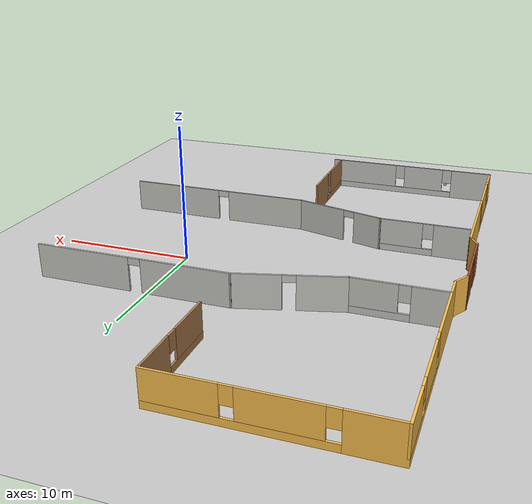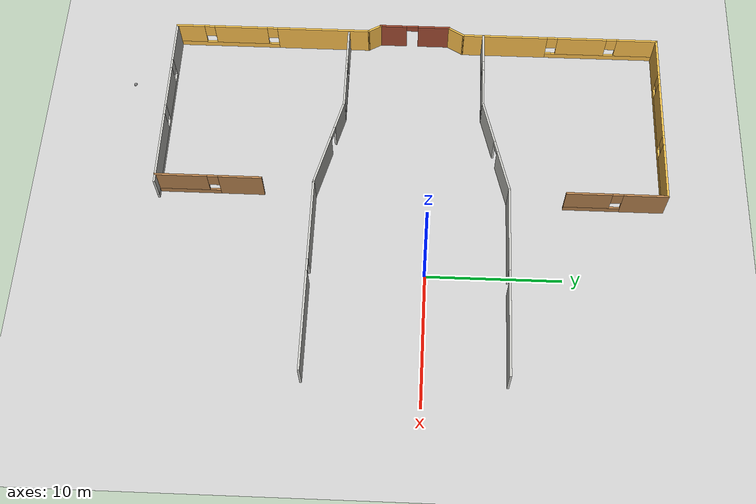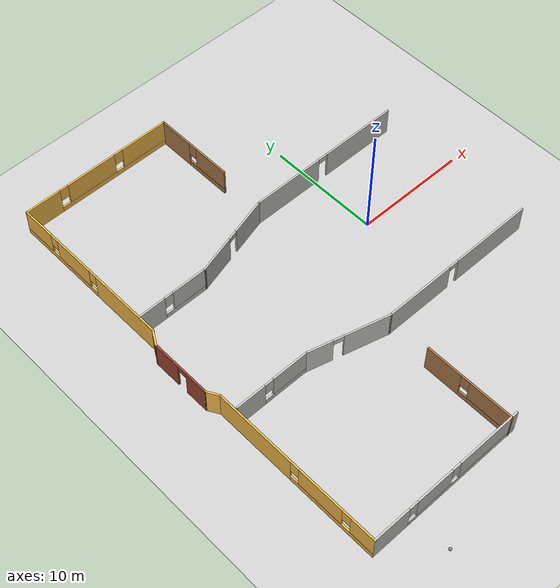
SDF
<sdf version="1.6">
 <world name="default">
  <model name="ground_plane">
   <static>1</static>
   <link name="link">
    <collision name="collision">
     <geometry><plane><normal>0 0 1</normal><size>100 100</size></plane></geometry>
     <surface><friction><ode><mu>100</mu><mu2>50</mu2></ode></friction></surface>
    </collision>
    <visual name="visual">
     <cast_shadows>0</cast_shadows>
     <geometry><plane><normal>0 0 1</normal><size>100 100</size></plane></geometry>
     <material>
      <script><uri>file://media/materials/scripts/gazebo.material</uri><name>Gazebo/Grey</name></script>
     </material>
    </visual>
   </link>
  </model>
  <model name="model">
   <pose>1.3797 -1.1711 0 0 -0 0</pose>
   <link name="Wall_22">
    <pose>-21.3175 -11.3683 0 0 0 -1.5708</pose>
    <visual name="Wall_22_Visual_0">
     <pose>-3.98783 0 1.25 0 -0 0</pose>
     <geometry><box><size>7.27435 0.15 2.5</size></box></geometry>
     <material>
      <script><uri>file://media/materials/scripts/gazebo.material</uri><name>Gazebo/Grey</name></script>
      <ambient>1 0.764706 0.305882 1</ambient>
     </material>
     <meta><layer>0</layer></meta>
    </visual>
    <collision name="Wall_22_Collision_0">
     <geometry><box><size>7.27435 0.15 2.5</size></box></geometry>
     <pose>-3.98783 0 1.25 0 -0 0</pose>
    </collision>
    <visual name="Wall_22_Visual_1">
     <pose>3.63717 0 0.25 0 -0 0</pose>
     <geometry><box><size>7.97565 0.15 0.5</size></box></geometry>
     <material>
      <script><uri>file://media/materials/scripts/gazebo.material</uri><name>Gazebo/Grey</name></script>
      <ambient>1 0.764706 0.305882 1</ambient>
     </material>
     <meta><layer>0</layer></meta>
    </visual>
    <collision name="Wall_22_Collision_1">
     <geometry><box><size>7.97565 0.15 0.5</size></box></geometry>
     <pose>3.63717 0 0.25 0 -0 0</pose>
    </collision>
    <visual name="Wall_22_Visual_2">
     <pose>2.53115 0 1.5 0 -0 0</pose>
     <geometry><box><size>4.16361 0.15 2</size></box></geometry>
     <material>
      <script><uri>file://media/materials/scripts/gazebo.material</uri><name>Gazebo/Grey</name></script>
      <ambient>1 0.764706 0.305882 1</ambient>
     </material>
     <meta><layer>0</layer></meta>
    </visual>
    <collision name="Wall_22_Collision_2">
     <geometry><box><size>4.16361 0.15 2</size></box></geometry>
     <pose>2.53115 0 1.5 0 -0 0</pose>
    </collision>
    <visual name="Wall_22_Visual_3">
     <pose>6.51898 0 1.5 0 -0 0</pose>
     <geometry><box><size>2.21204 0.15 2</size></box></geometry>
     <material>
      <script><uri>file://media/materials/scripts/gazebo.material</uri><name>Gazebo/Grey</name></script>
      <ambient>1 0.764706 0.305882 1</ambient>
     </material>
     <meta><layer>0</layer></meta>
    </visual>
    <collision name="Wall_22_Collision_3">
     <geometry><box><size>2.21204 0.15 2</size></box></geometry>
     <pose>6.51898 0 1.5 0 -0 0</pose>
    </collision>
    <visual name="Wall_22_Visual_4">
     <pose>0.049349 0 1.9 0 -0 0</pose>
     <geometry><box><size>0.8 0.15 1.2</size></box></geometry>
     <material>
      <script><uri>file://media/materials/scripts/gazebo.material</uri><name>Gazebo/Grey</name></script>
      <ambient>1 0.764706 0.305882 1</ambient>
     </material>
     <meta><layer>0</layer></meta>
    </visual>
    <collision name="Wall_22_Collision_4">
     <geometry><box><size>0.8 0.15 1.2</size></box></geometry>
     <pose>0.049349 0 1.9 0 -0 0</pose>
    </collision>
    <visual name="Wall_22_Visual_5">
     <pose>5.01296 0 1.9 0 -0 0</pose>
     <geometry><box><size>0.8 0.15 1.2</size></box></geometry>
     <material>
      <script><uri>file://media/materials/scripts/gazebo.material</uri><name>Gazebo/Grey</name></script>
      <ambient>1 0.764706 0.305882 1</ambient>
     </material>
     <meta><layer>0</layer></meta>
    </visual>
    <collision name="Wall_22_Collision_5">
     <geometry><box><size>0.8 0.15 1.2</size></box></geometry>
     <pose>5.01296 0 1.9 0 -0 0</pose>
    </collision>
   </link>
   <link name="Wall_23">
    <pose>-14.2675 -18.9183 0 0 -0 0</pose>
    <visual name="Wall_23_Visual_0">
     <pose>-5.44036 0 1.25 0 -0 0</pose>
     <geometry><box><size>3.36928 0.15 2.5</size></box></geometry>
     <material>
      <script><uri>file://media/materials/scripts/gazebo.material</uri><name>Gazebo/CeilingTiled</name></script>
      <ambient>1 0.764706 0.305882 1</ambient>
     </material>
     <meta><layer>0</layer></meta>
    </visual>
    <collision name="Wall_23_Collision_0">
     <geometry><box><size>3.36928 0.15 2.5</size></box></geometry>
     <pose>-5.44036 0 1.25 0 -0 0</pose>
    </collision>
    <visual name="Wall_23_Visual_1">
     <pose>1.68464 0 0.25 0 -0 0</pose>
     <geometry><box><size>10.8807 0.15 0.5</size></box></geometry>
     <material>
      <script><uri>file://media/materials/scripts/gazebo.material</uri><name>Gazebo/CeilingTiled</name></script>
      <ambient>1 0.764706 0.305882 1</ambient>
     </material>
     <meta><layer>0</layer></meta>
    </visual>
    <collision name="Wall_23_Collision_1">
     <geometry><box><size>10.8807 0.15 0.5</size></box></geometry>
     <pose>1.68464 0 0.25 0 -0 0</pose>
    </collision>
    <visual name="Wall_23_Visual_2">
     <pose>-1.24407 0 1.5 0 -0 0</pose>
     <geometry><box><size>3.42331 0.15 2</size></box></geometry>
     <material>
      <script><uri>file://media/materials/scripts/gazebo.material</uri><name>Gazebo/CeilingTiled</name></script>
      <ambient>1 0.764706 0.305882 1</ambient>
     </material>
     <meta><layer>0</layer></meta>
    </visual>
    <collision name="Wall_23_Collision_2">
     <geometry><box><size>3.42331 0.15 2</size></box></geometry>
     <pose>-1.24407 0 1.5 0 -0 0</pose>
    </collision>
    <visual name="Wall_23_Visual_3">
     <pose>4.19629 0 1.5 0 -0 0</pose>
     <geometry><box><size>5.85741 0.15 2</size></box></geometry>
     <material>
      <script><uri>file://media/materials/scripts/gazebo.material</uri><name>Gazebo/CeilingTiled</name></script>
      <ambient>1 0.764706 0.305882 1</ambient>
     </material>
     <meta><layer>0</layer></meta>
    </visual>
    <collision name="Wall_23_Collision_3">
     <geometry><box><size>5.85741 0.15 2</size></box></geometry>
     <pose>4.19629 0 1.5 0 -0 0</pose>
    </collision>
    <visual name="Wall_23_Visual_4">
     <pose>-3.35572 0 1.9 0 -0 0</pose>
     <geometry><box><size>0.8 0.15 1.2</size></box></geometry>
     <material>
      <script><uri>file://media/materials/scripts/gazebo.material</uri><name>Gazebo/CeilingTiled</name></script>
      <ambient>1 0.764706 0.305882 1</ambient>
     </material>
     <meta><layer>0</layer></meta>
    </visual>
    <collision name="Wall_23_Collision_4">
     <geometry><box><size>0.8 0.15 1.2</size></box></geometry>
     <pose>-3.35572 0 1.9 0 -0 0</pose>
    </collision>
    <visual name="Wall_23_Visual_5">
     <pose>0.867585 0 1.9 0 -0 0</pose>
     <geometry><box><size>0.8 0.15 1.2</size></box></geometry>
     <material>
      <script><uri>file://media/materials/scripts/gazebo.material</uri><name>Gazebo/CeilingTiled</name></script>
      <ambient>1 0.764706 0.305882 1</ambient>
     </material>
     <meta><layer>0</layer></meta>
    </visual>
    <collision name="Wall_23_Collision_5">
     <geometry><box><size>0.8 0.15 1.2</size></box></geometry>
     <pose>0.867585 0 1.9 0 -0 0</pose>
    </collision>
   </link>
   <link name="Wall_36">
    <collision name="Wall_36_Collision">
     <geometry><box><size>1.25 0.15 2.5</size></box></geometry>
     <pose>0 0 1.25 0 -0 0</pose>
    </collision>
    <visual name="Wall_36_Visual">
     <pose>0 0 1.25 0 -0 0</pose>
     <geometry><box><size>1.25 0.15 2.5</size></box></geometry>
     <material>
      <script><uri>file://media/materials/scripts/gazebo.material</uri><name>Gazebo/Grey</name></script>
      <ambient>1 0.764706 0.305882 1</ambient>
     </material>
     <meta><layer>0</layer></meta>
    </visual>
    <pose>-21.5925 -3.34197 0 0 -0 2.0944</pose>
   </link>
   <link name="Wall_37">
    <pose>-21.8675 -0.190651 0 0 -0 1.5708</pose>
    <visual name="Wall_37_Visual_0">
     <pose>-1.69498 0 1.25 0 -0 0</pose>
     <geometry><box><size>2.11003 0.15 2.5</size></box></geometry>
     <material>
      <script><uri>file://media/materials/scripts/gazebo.material</uri><name>Gazebo/Bricks</name></script>
      <ambient>1 1 1 1</ambient>
     </material>
     <meta><layer>0</layer></meta>
    </visual>
    <collision name="Wall_37_Collision_0">
     <geometry><box><size>2.11003 0.15 2.5</size></box></geometry>
     <pose>-1.69498 0 1.25 0 -0 0</pose>
    </collision>
    <visual name="Wall_37_Visual_1">
     <pose>1.50502 0 1.25 0 -0 0</pose>
     <geometry><box><size>2.48997 0.15 2.5</size></box></geometry>
     <material>
      <script><uri>file://media/materials/scripts/gazebo.material</uri><name>Gazebo/Bricks</name></script>
      <ambient>1 1 1 1</ambient>
     </material>
     <meta><layer>0</layer></meta>
    </visual>
    <collision name="Wall_37_Collision_1">
     <geometry><box><size>2.48997 0.15 2.5</size></box></geometry>
     <pose>1.50502 0 1.25 0 -0 0</pose>
    </collision>
    <visual name="Wall_37_Visual_2">
     <pose>-0.189968 0 2.25 0 -0 0</pose>
     <geometry><box><size>0.9 0.15 0.5</size></box></geometry>
     <material>
      <script><uri>file://media/materials/scripts/gazebo.material</uri><name>Gazebo/Bricks</name></script>
      <ambient>1 1 1 1</ambient>
     </material>
     <meta><layer>0</layer></meta>
    </visual>
    <collision name="Wall_37_Collision_2">
     <geometry><box><size>0.9 0.15 0.5</size></box></geometry>
     <pose>-0.189968 0 2.25 0 -0 0</pose>
    </collision>
   </link>
   <link name="Wall_38">
    <collision name="Wall_38_Collision">
     <geometry><box><size>1.5 0.15 2.5</size></box></geometry>
     <pose>0 0 1.25 0 -0 0</pose>
    </collision>
    <visual name="Wall_38_Visual">
     <pose>0 0 1.25 0 -0 0</pose>
     <geometry><box><size>1.5 0.15 2.5</size></box></geometry>
     <material>
      <script><uri>file://media/materials/scripts/gazebo.material</uri><name>Gazebo/Grey</name></script>
      <ambient>1 0.764706 0.305882 1</ambient>
     </material>
     <meta><layer>0</layer></meta>
    </visual>
    <pose>-21.53 3.06892 0 0 -0 1.0472</pose>
   </link>
   <link name="Wall_40">
    <pose>-21.1925 11.2035 0 0 -0 1.5708</pose>
    <visual name="Wall_40_Visual_0">
     <pose>-4.29734 0 1.25 0 -0 0</pose>
     <geometry><box><size>6.65533 0.15 2.5</size></box></geometry>
     <material>
      <script><uri>file://media/materials/scripts/gazebo.material</uri><name>Gazebo/Grey</name></script>
      <ambient>1 0.764706 0.305882 1</ambient>
     </material>
     <meta><layer>0</layer></meta>
    </visual>
    <collision name="Wall_40_Collision_0">
     <geometry><box><size>6.65533 0.15 2.5</size></box></geometry>
     <pose>-4.29734 0 1.25 0 -0 0</pose>
    </collision>
    <visual name="Wall_40_Visual_1">
     <pose>3.32766 0 0.25 0 -0 0</pose>
     <geometry><box><size>8.59467 0.15 0.5</size></box></geometry>
     <material>
      <script><uri>file://media/materials/scripts/gazebo.material</uri><name>Gazebo/Grey</name></script>
      <ambient>1 0.764706 0.305882 1</ambient>
     </material>
     <meta><layer>0</layer></meta>
    </visual>
    <collision name="Wall_40_Collision_1">
     <geometry><box><size>8.59467 0.15 0.5</size></box></geometry>
     <pose>3.32766 0 0.25 0 -0 0</pose>
    </collision>
    <visual name="Wall_40_Visual_2">
     <pose>1.74939 0 1.5 0 -0 0</pose>
     <geometry><box><size>3.83812 0.15 2</size></box></geometry>
     <material>
      <script><uri>file://media/materials/scripts/gazebo.material</uri><name>Gazebo/Grey</name></script>
      <ambient>1 0.764706 0.305882 1</ambient>
     </material>
     <meta><layer>0</layer></meta>
    </visual>
    <collision name="Wall_40_Collision_2">
     <geometry><box><size>3.83812 0.15 2</size></box></geometry>
     <pose>1.74939 0 1.5 0 -0 0</pose>
    </collision>
    <visual name="Wall_40_Visual_3">
     <pose>6.04673 0 1.5 0 -0 0</pose>
     <geometry><box><size>3.15655 0.15 2</size></box></geometry>
     <material>
      <script><uri>file://media/materials/scripts/gazebo.material</uri><name>Gazebo/Grey</name></script>
      <ambient>1 0.764706 0.305882 1</ambient>
     </material>
     <meta><layer>0</layer></meta>
    </visual>
    <collision name="Wall_40_Collision_3">
     <geometry><box><size>3.15655 0.15 2</size></box></geometry>
     <pose>6.04673 0 1.5 0 -0 0</pose>
    </collision>
    <visual name="Wall_40_Visual_4">
     <pose>-0.569674 0 1.9 0 -0 0</pose>
     <geometry><box><size>0.8 0.15 1.2</size></box></geometry>
     <material>
      <script><uri>file://media/materials/scripts/gazebo.material</uri><name>Gazebo/Grey</name></script>
      <ambient>1 0.764706 0.305882 1</ambient>
     </material>
     <meta><layer>0</layer></meta>
    </visual>
    <collision name="Wall_40_Collision_4">
     <geometry><box><size>0.8 0.15 1.2</size></box></geometry>
     <pose>-0.569674 0 1.9 0 -0 0</pose>
    </collision>
    <visual name="Wall_40_Visual_5">
     <pose>4.06845 0 1.9 0 -0 0</pose>
     <geometry><box><size>0.8 0.15 1.2</size></box></geometry>
     <material>
      <script><uri>file://media/materials/scripts/gazebo.material</uri><name>Gazebo/Grey</name></script>
      <ambient>1 0.764706 0.305882 1</ambient>
     </material>
     <meta><layer>0</layer></meta>
    </visual>
    <collision name="Wall_40_Collision_5">
     <geometry><box><size>0.8 0.15 1.2</size></box></geometry>
     <pose>4.06845 0 1.9 0 -0 0</pose>
    </collision>
   </link>
   <link name="Wall_51">
    <pose>-14.2675 18.7535 0 0 -0 0</pose>
    <visual name="Wall_51_Visual_0">
     <pose>-5.3786 0 1.25 0 -0 0</pose>
     <geometry><box><size>3.2428 0.15 2.5</size></box></geometry>
     <material>
      <script><uri>file://media/materials/scripts/gazebo.material</uri><name>Gazebo/Grey</name></script>
      <ambient>1 0.764706 0.305882 1</ambient>
     </material>
     <meta><layer>0</layer></meta>
    </visual>
    <collision name="Wall_51_Collision_0">
     <geometry><box><size>3.2428 0.15 2.5</size></box></geometry>
     <pose>-5.3786 0 1.25 0 -0 0</pose>
    </collision>
    <visual name="Wall_51_Visual_1">
     <pose>1.6214 0 0.25 0 -0 0</pose>
     <geometry><box><size>10.7572 0.15 0.5</size></box></geometry>
     <material>
      <script><uri>file://media/materials/scripts/gazebo.material</uri><name>Gazebo/Grey</name></script>
      <ambient>1 0.764706 0.305882 1</ambient>
     </material>
     <meta><layer>0</layer></meta>
    </visual>
    <collision name="Wall_51_Collision_1">
     <geometry><box><size>10.7572 0.15 0.5</size></box></geometry>
     <pose>1.6214 0 0.25 0 -0 0</pose>
    </collision>
    <visual name="Wall_51_Visual_2">
     <pose>-0.618681 0 1.5 0 -0 0</pose>
     <geometry><box><size>4.67704 0.15 2</size></box></geometry>
     <material>
      <script><uri>file://media/materials/scripts/gazebo.material</uri><name>Gazebo/Grey</name></script>
      <ambient>1 0.764706 0.305882 1</ambient>
     </material>
     <meta><layer>0</layer></meta>
    </visual>
    <collision name="Wall_51_Collision_2">
     <geometry><box><size>4.67704 0.15 2</size></box></geometry>
     <pose>-0.618681 0 1.5 0 -0 0</pose>
    </collision>
    <visual name="Wall_51_Visual_3">
     <pose>4.75992 0 1.5 0 -0 0</pose>
     <geometry><box><size>4.48016 0.15 2</size></box></geometry>
     <material>
      <script><uri>file://media/materials/scripts/gazebo.material</uri><name>Gazebo/Grey</name></script>
      <ambient>1 0.764706 0.305882 1</ambient>
     </material>
     <meta><layer>0</layer></meta>
    </visual>
    <collision name="Wall_51_Collision_3">
     <geometry><box><size>4.48016 0.15 2</size></box></geometry>
     <pose>4.75992 0 1.5 0 -0 0</pose>
    </collision>
    <visual name="Wall_51_Visual_4">
     <pose>-3.3572 0 1.9 0 -0 0</pose>
     <geometry><box><size>0.8 0.15 1.2</size></box></geometry>
     <material>
      <script><uri>file://media/materials/scripts/gazebo.material</uri><name>Gazebo/Grey</name></script>
      <ambient>1 0.764706 0.305882 1</ambient>
     </material>
     <meta><layer>0</layer></meta>
    </visual>
    <collision name="Wall_51_Collision_4">
     <geometry><box><size>0.8 0.15 1.2</size></box></geometry>
     <pose>-3.3572 0 1.9 0 -0 0</pose>
    </collision>
    <visual name="Wall_51_Visual_5">
     <pose>2.11984 0 1.9 0 -0 0</pose>
     <geometry><box><size>0.8 0.15 1.2</size></box></geometry>
     <material>
      <script><uri>file://media/materials/scripts/gazebo.material</uri><name>Gazebo/Grey</name></script>
      <ambient>1 0.764706 0.305882 1</ambient>
     </material>
     <meta><layer>0</layer></meta>
    </visual>
    <collision name="Wall_51_Collision_5">
     <geometry><box><size>0.8 0.15 1.2</size></box></geometry>
     <pose>2.11984 0 1.9 0 -0 0</pose>
    </collision>
   </link>
   <link name="Wall_55">
    <pose>-17.9939 5.2199 0 0 -0 0</pose>
    <visual name="Wall_55_Visual_0">
     <pose>-2.01287 0 1.25 0 -0 0</pose>
     <geometry><box><size>2.47427 0.15 2.5</size></box></geometry>
     <material>
      <script><uri>file://media/materials/scripts/gazebo.material</uri><name>Gazebo/CeilingTiled</name></script>
      <ambient>0.333333 0.666667 1 1</ambient>
     </material>
     <meta><layer>0</layer></meta>
    </visual>
    <collision name="Wall_55_Collision_0">
     <geometry><box><size>2.47427 0.15 2.5</size></box></geometry>
     <pose>-2.01287 0 1.25 0 -0 0</pose>
    </collision>
    <visual name="Wall_55_Visual_1">
     <pose>1.23714 0 0.25 0 -0 0</pose>
     <geometry><box><size>4.02573 0.15 0.5</size></box></geometry>
     <material>
      <script><uri>file://media/materials/scripts/gazebo.material</uri><name>Gazebo/CeilingTiled</name></script>
      <ambient>0.333333 0.666667 1 1</ambient>
     </material>
     <meta><layer>0</layer></meta>
    </visual>
    <collision name="Wall_55_Collision_1">
     <geometry><box><size>4.02573 0.15 0.5</size></box></geometry>
     <pose>1.23714 0 0.25 0 -0 0</pose>
    </collision>
    <visual name="Wall_55_Visual_2">
     <pose>1.63714 0 1.5 0 -0 0</pose>
     <geometry><box><size>3.22573 0.15 2</size></box></geometry>
     <material>
      <script><uri>file://media/materials/scripts/gazebo.material</uri><name>Gazebo/CeilingTiled</name></script>
      <ambient>0.333333 0.666667 1 1</ambient>
     </material>
     <meta><layer>0</layer></meta>
    </visual>
    <collision name="Wall_55_Collision_2">
     <geometry><box><size>3.22573 0.15 2</size></box></geometry>
     <pose>1.63714 0 1.5 0 -0 0</pose>
    </collision>
    <visual name="Wall_55_Visual_3">
     <pose>-0.37573 0 1.9 0 -0 0</pose>
     <geometry><box><size>0.8 0.15 1.2</size></box></geometry>
     <material>
      <script><uri>file://media/materials/scripts/gazebo.material</uri><name>Gazebo/CeilingTiled</name></script>
      <ambient>0.333333 0.666667 1 1</ambient>
     </material>
     <meta><layer>0</layer></meta>
    </visual>
    <collision name="Wall_55_Collision_3">
     <geometry><box><size>0.8 0.15 1.2</size></box></geometry>
     <pose>-0.37573 0 1.9 0 -0 0</pose>
    </collision>
   </link>
   <link name="Wall_56">
    <pose>-11.1483 6.20341 0 0 -0 0.261799</pose>
    <visual name="Wall_56_Visual_0">
     <pose>-2.15033 0 1.25 0 -0 0</pose>
     <geometry><box><size>3.44934 0.15 2.5</size></box></geometry>
     <material>
      <script><uri>file://media/materials/scripts/gazebo.material</uri><name>Gazebo/CeilingTiled</name></script>
      <ambient>0.333333 0.666667 1 1</ambient>
     </material>
     <meta><layer>0</layer></meta>
    </visual>
    <collision name="Wall_56_Collision_0">
     <geometry><box><size>3.44934 0.15 2.5</size></box></geometry>
     <pose>-2.15033 0 1.25 0 -0 0</pose>
    </collision>
    <visual name="Wall_56_Visual_1">
     <pose>2.17467 0 1.25 0 -0 0</pose>
     <geometry><box><size>3.40066 0.15 2.5</size></box></geometry>
     <material>
      <script><uri>file://media/materials/scripts/gazebo.material</uri><name>Gazebo/CeilingTiled</name></script>
      <ambient>0.333333 0.666667 1 1</ambient>
     </material>
     <meta><layer>0</layer></meta>
    </visual>
    <collision name="Wall_56_Collision_1">
     <geometry><box><size>3.40066 0.15 2.5</size></box></geometry>
     <pose>2.17467 0 1.25 0 -0 0</pose>
    </collision>
    <visual name="Wall_56_Visual_2">
     <pose>0.024343 0 2.25 0 -0 0</pose>
     <geometry><box><size>0.9 0.15 0.5</size></box></geometry>
     <material>
      <script><uri>file://media/materials/scripts/gazebo.material</uri><name>Gazebo/CeilingTiled</name></script>
      <ambient>0.333333 0.666667 1 1</ambient>
     </material>
     <meta><layer>0</layer></meta>
    </visual>
    <collision name="Wall_56_Collision_2">
     <geometry><box><size>0.9 0.15 0.5</size></box></geometry>
     <pose>0.024343 0 2.25 0 -0 0</pose>
    </collision>
   </link>
   <link name="Wall_57">
    <pose>-0.302825 7.18693 0 0 -0 0</pose>
    <visual name="Wall_57_Visual_0">
     <pose>-3.97135 0 1.25 0 -0 0</pose>
     <geometry><box><size>6.55729 0.15 2.5</size></box></geometry>
     <material>
      <script><uri>file://media/materials/scripts/gazebo.material</uri><name>Gazebo/CeilingTiled</name></script>
      <ambient>0.333333 0.666667 1 1</ambient>
     </material>
     <meta><layer>0</layer></meta>
    </visual>
    <collision name="Wall_57_Collision_0">
     <geometry><box><size>6.55729 0.15 2.5</size></box></geometry>
     <pose>-3.97135 0 1.25 0 -0 0</pose>
    </collision>
    <visual name="Wall_57_Visual_1">
     <pose>3.72865 0 1.25 0 -0 0</pose>
     <geometry><box><size>7.04271 0.15 2.5</size></box></geometry>
     <material>
      <script><uri>file://media/materials/scripts/gazebo.material</uri><name>Gazebo/CeilingTiled</name></script>
      <ambient>0.333333 0.666667 1 1</ambient>
     </material>
     <meta><layer>0</layer></meta>
    </visual>
    <collision name="Wall_57_Collision_1">
     <geometry><box><size>7.04271 0.15 2.5</size></box></geometry>
     <pose>3.72865 0 1.25 0 -0 0</pose>
    </collision>
    <visual name="Wall_57_Visual_2">
     <pose>-0.242707 0 2.25 0 -0 0</pose>
     <geometry><box><size>0.9 0.15 0.5</size></box></geometry>
     <material>
      <script><uri>file://media/materials/scripts/gazebo.material</uri><name>Gazebo/CeilingTiled</name></script>
      <ambient>0.333333 0.666667 1 1</ambient>
     </material>
     <meta><layer>0</layer></meta>
    </visual>
    <collision name="Wall_57_Collision_2">
     <geometry><box><size>0.9 0.15 0.5</size></box></geometry>
     <pose>-0.242707 0 2.25 0 -0 0</pose>
    </collision>
   </link>
   <link name="Wall_61">
    <pose>-17.7875 -5.35828 0 0 -0 0</pose>
    <visual name="Wall_61_Visual_0">
     <pose>-2.04403 0 1.25 0 -0 0</pose>
     <geometry><box><size>2.66193 0.15 2.5</size></box></geometry>
     <material>
      <script><uri>file://media/materials/scripts/gazebo.material</uri><name>Gazebo/CeilingTiled</name></script>
      <ambient>0.333333 0.666667 1 1</ambient>
     </material>
     <meta><layer>0</layer></meta>
    </visual>
    <collision name="Wall_61_Collision_0">
     <geometry><box><size>2.66193 0.15 2.5</size></box></geometry>
     <pose>-2.04403 0 1.25 0 -0 0</pose>
    </collision>
    <visual name="Wall_61_Visual_1">
     <pose>1.33097 0 0.25 0 -0 0</pose>
     <geometry><box><size>4.08807 0.15 0.5</size></box></geometry>
     <material>
      <script><uri>file://media/materials/scripts/gazebo.material</uri><name>Gazebo/CeilingTiled</name></script>
      <ambient>0.333333 0.666667 1 1</ambient>
     </material>
     <meta><layer>0</layer></meta>
    </visual>
    <collision name="Wall_61_Collision_1">
     <geometry><box><size>4.08807 0.15 0.5</size></box></geometry>
     <pose>1.33097 0 0.25 0 -0 0</pose>
    </collision>
    <visual name="Wall_61_Visual_2">
     <pose>1.73097 0 1.5 0 -0 0</pose>
     <geometry><box><size>3.28807 0.15 2</size></box></geometry>
     <material>
      <script><uri>file://media/materials/scripts/gazebo.material</uri><name>Gazebo/CeilingTiled</name></script>
      <ambient>0.333333 0.666667 1 1</ambient>
     </material>
     <meta><layer>0</layer></meta>
    </visual>
    <collision name="Wall_61_Collision_2">
     <geometry><box><size>3.28807 0.15 2</size></box></geometry>
     <pose>1.73097 0 1.5 0 -0 0</pose>
    </collision>
    <visual name="Wall_61_Visual_3">
     <pose>-0.313068 0 1.9 0 -0 0</pose>
     <geometry><box><size>0.8 0.15 1.2</size></box></geometry>
     <material>
      <script><uri>file://media/materials/scripts/gazebo.material</uri><name>Gazebo/CeilingTiled</name></script>
      <ambient>0.333333 0.666667 1 1</ambient>
     </material>
     <meta><layer>0</layer></meta>
    </visual>
    <collision name="Wall_61_Collision_3">
     <geometry><box><size>0.8 0.15 1.2</size></box></geometry>
     <pose>-0.313068 0 1.9 0 -0 0</pose>
    </collision>
   </link>
   <link name="Wall_62">
    <pose>-11.0585 -6.27709 0 0 0 -0.261799</pose>
    <visual name="Wall_62_Visual_0">
     <pose>-2.4588 0 1.25 0 -0 0</pose>
     <geometry><box><size>2.33239 0.15 2.5</size></box></geometry>
     <material>
      <script><uri>file://media/materials/scripts/gazebo.material</uri><name>Gazebo/CeilingTiled</name></script>
      <ambient>0.333333 0.666667 1 1</ambient>
     </material>
     <meta><layer>0</layer></meta>
    </visual>
    <collision name="Wall_62_Collision_0">
     <geometry><box><size>2.33239 0.15 2.5</size></box></geometry>
     <pose>-2.4588 0 1.25 0 -0 0</pose>
    </collision>
    <visual name="Wall_62_Visual_1">
     <pose>1.6162 0 1.25 0 -0 0</pose>
     <geometry><box><size>4.01761 0.15 2.5</size></box></geometry>
     <material>
      <script><uri>file://media/materials/scripts/gazebo.material</uri><name>Gazebo/CeilingTiled</name></script>
      <ambient>0.333333 0.666667 1 1</ambient>
     </material>
     <meta><layer>0</layer></meta>
    </visual>
    <collision name="Wall_62_Collision_1">
     <geometry><box><size>4.01761 0.15 2.5</size></box></geometry>
     <pose>1.6162 0 1.25 0 -0 0</pose>
    </collision>
    <visual name="Wall_62_Visual_2">
     <pose>-0.842608 0 2.25 0 -0 0</pose>
     <geometry><box><size>0.9 0.15 0.5</size></box></geometry>
     <material>
      <script><uri>file://media/materials/scripts/gazebo.material</uri><name>Gazebo/CeilingTiled</name></script>
      <ambient>0.333333 0.666667 1 1</ambient>
     </material>
     <meta><layer>0</layer></meta>
    </visual>
    <collision name="Wall_62_Collision_2">
     <geometry><box><size>0.9 0.15 0.5</size></box></geometry>
     <pose>-0.842608 0 2.25 0 -0 0</pose>
    </collision>
   </link>
   <link name="Wall_63">
    <pose>-0.331362 -7.19589 0 0 -0 0</pose>
    <visual name="Wall_63_Visual_0">
     <pose>-4.17243 0 1.25 0 -0 0</pose>
     <geometry><box><size>6.40125 0.15 2.5</size></box></geometry>
     <material>
      <script><uri>file://media/materials/scripts/gazebo.material</uri><name>Gazebo/CeilingTiled</name></script>
      <ambient>0.333333 0.666667 1 1</ambient>
     </material>
     <meta><layer>0</layer></meta>
    </visual>
    <collision name="Wall_63_Collision_0">
     <geometry><box><size>6.40125 0.15 2.5</size></box></geometry>
     <pose>-4.17243 0 1.25 0 -0 0</pose>
    </collision>
    <visual name="Wall_63_Visual_1">
     <pose>3.65062 0 1.25 0 -0 0</pose>
     <geometry><box><size>7.44487 0.15 2.5</size></box></geometry>
     <material>
      <script><uri>file://media/materials/scripts/gazebo.material</uri><name>Gazebo/CeilingTiled</name></script>
      <ambient>0.333333 0.666667 1 1</ambient>
     </material>
     <meta><layer>0</layer></meta>
    </visual>
    <collision name="Wall_63_Collision_1">
     <geometry><box><size>7.44487 0.15 2.5</size></box></geometry>
     <pose>3.65062 0 1.25 0 -0 0</pose>
    </collision>
    <visual name="Wall_63_Visual_2">
     <pose>-0.52181 0 2.25 0 -0 0</pose>
     <geometry><box><size>0.9 0.15 0.5</size></box></geometry>
     <material>
      <script><uri>file://media/materials/scripts/gazebo.material</uri><name>Gazebo/CeilingTiled</name></script>
      <ambient>0.333333 0.666667 1 1</ambient>
     </material>
     <meta><layer>0</layer></meta>
    </visual>
    <collision name="Wall_63_Collision_2">
     <geometry><box><size>0.9 0.15 0.5</size></box></geometry>
     <pose>-0.52181 0 2.25 0 -0 0</pose>
    </collision>
   </link>
   <link name="Wall_73">
    <pose>-7.76956 -15.0131 0 0 0 -1.5708</pose>
    <visual name="Wall_73_Visual_0">
     <pose>-2.37032 0 1.25 0 -0 0</pose>
     <geometry><box><size>3.25936 0.15 2.5</size></box></geometry>
     <material>
      <script><uri>file://media/materials/scripts/gazebo.material</uri><name>Gazebo/Wood</name></script>
      <ambient>1 1 1 1</ambient>
     </material>
     <meta><layer>0</layer></meta>
    </visual>
    <collision name="Wall_73_Collision_0">
     <geometry><box><size>3.25936 0.15 2.5</size></box></geometry>
     <pose>-2.37032 0 1.25 0 -0 0</pose>
    </collision>
    <visual name="Wall_73_Visual_1">
     <pose>1.62968 0 0.25 0 -0 0</pose>
     <geometry><box><size>4.74064 0.15 0.5</size></box></geometry>
     <material>
      <script><uri>file://media/materials/scripts/gazebo.material</uri><name>Gazebo/Wood</name></script>
      <ambient>1 1 1 1</ambient>
     </material>
     <meta><layer>0</layer></meta>
    </visual>
    <collision name="Wall_73_Collision_1">
     <geometry><box><size>4.74064 0.15 0.5</size></box></geometry>
     <pose>1.62968 0 0.25 0 -0 0</pose>
    </collision>
    <visual name="Wall_73_Visual_2">
     <pose>2.02968 0 1.5 0 -0 0</pose>
     <geometry><box><size>3.94064 0.15 2</size></box></geometry>
     <material>
      <script><uri>file://media/materials/scripts/gazebo.material</uri><name>Gazebo/Wood</name></script>
      <ambient>1 1 1 1</ambient>
     </material>
     <meta><layer>0</layer></meta>
    </visual>
    <collision name="Wall_73_Collision_2">
     <geometry><box><size>3.94064 0.15 2</size></box></geometry>
     <pose>2.02968 0 1.5 0 -0 0</pose>
    </collision>
    <visual name="Wall_73_Visual_3">
     <pose>-0.340641 0 1.9 0 -0 0</pose>
     <geometry><box><size>0.8 0.15 1.2</size></box></geometry>
     <material>
      <script><uri>file://media/materials/scripts/gazebo.material</uri><name>Gazebo/Wood</name></script>
      <ambient>1 1 1 1</ambient>
     </material>
     <meta><layer>0</layer></meta>
    </visual>
    <collision name="Wall_73_Collision_3">
     <geometry><box><size>0.8 0.15 1.2</size></box></geometry>
     <pose>-0.340641 0 1.9 0 -0 0</pose>
    </collision>
   </link>
   <link name="Wall_80">
    <pose>-7.34249 15.0785 0 0 0 -1.5708</pose>
    <visual name="Wall_80_Visual_0">
     <pose>-2.09249 0 1.25 0 -0 0</pose>
     <geometry><box><size>3.31501 0.15 2.5</size></box></geometry>
     <material>
      <script><uri>file://media/materials/scripts/gazebo.material</uri><name>Gazebo/Wood</name></script>
      <ambient>1 1 1 1</ambient>
     </material>
     <meta><layer>0</layer></meta>
    </visual>
    <collision name="Wall_80_Collision_0">
     <geometry><box><size>3.31501 0.15 2.5</size></box></geometry>
     <pose>-2.09249 0 1.25 0 -0 0</pose>
    </collision>
    <visual name="Wall_80_Visual_1">
     <pose>1.65751 0 0.25 0 -0 0</pose>
     <geometry><box><size>4.18499 0.15 0.5</size></box></geometry>
     <material>
      <script><uri>file://media/materials/scripts/gazebo.material</uri><name>Gazebo/Wood</name></script>
      <ambient>1 1 1 1</ambient>
     </material>
     <meta><layer>0</layer></meta>
    </visual>
    <collision name="Wall_80_Collision_1">
     <geometry><box><size>4.18499 0.15 0.5</size></box></geometry>
     <pose>1.65751 0 0.25 0 -0 0</pose>
    </collision>
    <visual name="Wall_80_Visual_2">
     <pose>2.05751 0 1.5 0 -0 0</pose>
     <geometry><box><size>3.38498 0.15 2</size></box></geometry>
     <material>
      <script><uri>file://media/materials/scripts/gazebo.material</uri><name>Gazebo/Wood</name></script>
      <ambient>1 1 1 1</ambient>
     </material>
     <meta><layer>0</layer></meta>
    </visual>
    <collision name="Wall_80_Collision_2">
     <geometry><box><size>3.38498 0.15 2</size></box></geometry>
     <pose>2.05751 0 1.5 0 -0 0</pose>
    </collision>
    <visual name="Wall_80_Visual_3">
     <pose>-0.034985 0 1.9 0 -0 0</pose>
     <geometry><box><size>0.8 0.15 1.2</size></box></geometry>
     <material>
      <script><uri>file://media/materials/scripts/gazebo.material</uri><name>Gazebo/Wood</name></script>
      <ambient>1 1 1 1</ambient>
     </material>
     <meta><layer>0</layer></meta>
    </visual>
    <collision name="Wall_80_Collision_3">
     <geometry><box><size>0.8 0.15 1.2</size></box></geometry>
     <pose>-0.034985 0 1.9 0 -0 0</pose>
    </collision>
   </link>
   <static>1</static>
  </model>
  <model name="my_ball">
   <link name="link_0">
    <inertial>
     <mass>1</mass>
     <inertia><ixx>0.1</ixx><ixy>0</ixy><ixz>0</ixz><iyy>0.1</iyy><iyz>0</iyz><izz>0.1</izz></inertia>
    </inertial>
    <visual name="visual">
     <geometry><sphere><radius>0.127507</radius></sphere></geometry>
     <material>
      <lighting>1</lighting>
      <script><uri>file://media/materials/scripts/gazebo.material</uri><name>Gazebo/Grey</name></script>
      <ambient>1 1 1 1</ambient>
      <diffuse>1 1 1 1</diffuse>
      <specular>1 1 1 1</specular>
      <emissive>1 1 1 1</emissive>
      <shader type="vertex"><normal_map>__default__</normal_map></shader>
     </material>
    </visual>
    <collision name="collision">
     <geometry><sphere><radius>0.127507</radius></sphere></geometry>
     <surface>
      <friction>
       <ode><mu>1</mu><mu2>1</mu2><fdir1>0 0 0</fdir1><slip1>0</slip1><slip2>0</slip2></ode>
       <torsional>
        <coefficient>1</coefficient>
        <patch_radius>0</patch_radius>
        <surface_radius>0</surface_radius>
        <use_patch_radius>1</use_patch_radius>
        <ode><slip>0</slip></ode>
       </torsional>
      </friction>
      <bounce><restitution_coefficient>0</restitution_coefficient><threshold>1e+06</threshold></bounce>
      <contact>
       <collide_without_contact>0</collide_without_contact>
       <collide_without_contact_bitmask>1</collide_without_contact_bitmask>
       <collide_bitmask>1</collide_bitmask>
       <ode>
        <soft_cfm>0</soft_cfm>
        <soft_erp>0.2</soft_erp>
        <kp>1e+13</kp>
        <kd>1</kd>
        <max_vel>0.01</max_vel>
        <min_depth>0</min_depth>
       </ode>
       <bullet>
        <split_impulse>1</split_impulse>
        <split_impulse_penetration_threshold>-0.01</split_impulse_penetration_threshold>
        <soft_cfm>0</soft_cfm>
        <soft_erp>0.2</soft_erp>
        <kp>1e+13</kp>
        <kd>1</kd>
       </bullet>
      </contact>
     </surface>
    </collision>
   </link>
   <static>0</static>
   <pose>-15.7995 -23.2985 0.078427 0 -0 0</pose>
  </model>
 </world>
</sdf>
